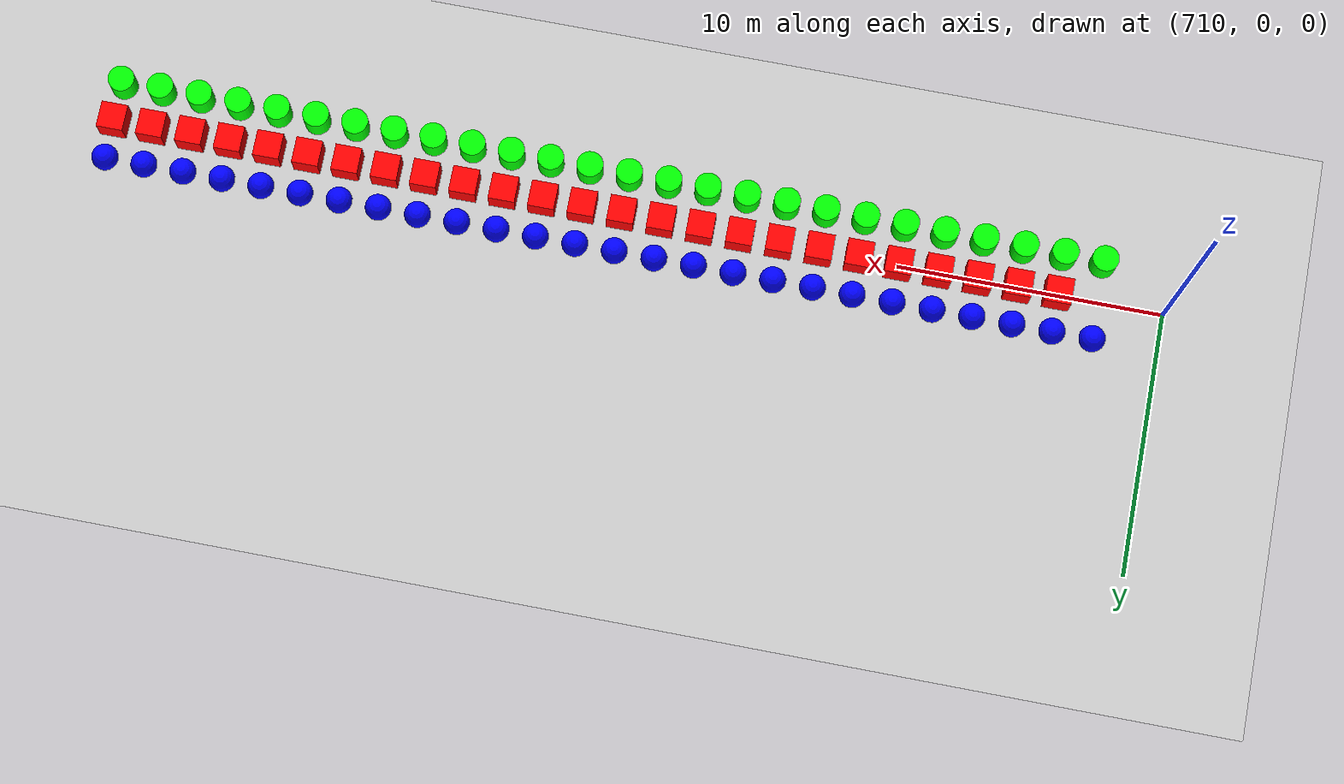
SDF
<sdf version="1.6">
 <world name="shapes">
  <model name="ground_plane">
   <static>true</static>
   <link name="link">
    <collision name="collision">
     <geometry><plane><normal>0 0 1</normal><size>100 100</size></plane></geometry>
    </collision>
    <visual name="visual">
     <geometry><plane><normal>0 0 1</normal><size>100 100</size></plane></geometry>
     <material>
      <ambient>0.8 0.8 0.8 1</ambient>
      <diffuse>0.8 0.8 0.8 1</diffuse>
      <specular>0.8 0.8 0.8 1</specular>
     </material>
    </visual>
   </link>
  </model>
  <model name="cylinder_975">
   <static>false</static>
   <pose>712.5 -1.5 0.5 0 0 0</pose>
   <link name="cylinder_link">
    <inertial>
     <inertia><ixx>2</ixx><ixy>0</ixy><ixz>0</ixz><iyy>2</iyy><iyz>0</iyz><izz>2</izz></inertia>
     <mass>2.0</mass>
    </inertial>
    <collision name="cylinder_collision">
     <geometry><cylinder><radius>0.5</radius><length>1.0</length></cylinder></geometry>
    </collision>
    <visual name="cylinder_visual">
     <geometry><cylinder><radius>0.5</radius><length>1.0</length></cylinder></geometry>
     <material><ambient>0 1 0 1</ambient><diffuse>0 1 0 1</diffuse><specular>0 1 0 1</specular></material>
    </visual>
   </link>
  </model>
  <model name="sphere_975">
   <static>false</static>
   <pose>712.5 1.5 0.5 0 0 0</pose>
   <link name="sphere_link">
    <inertial>
     <inertia><ixx>3</ixx><ixy>0</ixy><ixz>0</ixz><iyy>3</iyy><iyz>0</iyz><izz>3</izz></inertia>
     <mass>3.0</mass>
    </inertial>
    <collision name="sphere_collision"><geometry><sphere><radius>0.5</radius></sphere></geometry></collision>
    <visual name="sphere_visual">
     <geometry><sphere><radius>0.5</radius></sphere></geometry>
     <material><ambient>0 0 1 1</ambient><diffuse>0 0 1 1</diffuse><specular>0 0 1 1</specular></material>
    </visual>
   </link>
  </model>
  <model name="box_976">
   <static>false</static>
   <pose>714.0 0 0.5 0 0 0</pose>
   <link name="box_link">
    <inertial>
     <inertia><ixx>1</ixx><ixy>0</ixy><ixz>0</ixz><iyy>1</iyy><iyz>0</iyz><izz>1</izz></inertia>
     <mass>1.0</mass>
    </inertial>
    <collision name="box_collision"><geometry><box><size>1 1 1</size></box></geometry></collision>
    <visual name="box_visual">
     <geometry><box><size>1 1 1</size></box></geometry>
     <material><ambient>1 0 0 1</ambient><diffuse>1 0 0 1</diffuse><specular>1 0 0 1</specular></material>
    </visual>
   </link>
  </model>
  <model name="cylinder_976">
   <static>false</static>
   <pose>714.0 -1.5 0.5 0 0 0</pose>
   <link name="cylinder_link">
    <inertial>
     <inertia><ixx>2</ixx><ixy>0</ixy><ixz>0</ixz><iyy>2</iyy><iyz>0</iyz><izz>2</izz></inertia>
     <mass>2.0</mass>
    </inertial>
    <collision name="cylinder_collision">
     <geometry><cylinder><radius>0.5</radius><length>1.0</length></cylinder></geometry>
    </collision>
    <visual name="cylinder_visual">
     <geometry><cylinder><radius>0.5</radius><length>1.0</length></cylinder></geometry>
     <material><ambient>0 1 0 1</ambient><diffuse>0 1 0 1</diffuse><specular>0 1 0 1</specular></material>
    </visual>
   </link>
  </model>
  <model name="sphere_976">
   <static>false</static>
   <pose>714.0 1.5 0.5 0 0 0</pose>
   <link name="sphere_link">
    <inertial>
     <inertia><ixx>3</ixx><ixy>0</ixy><ixz>0</ixz><iyy>3</iyy><iyz>0</iyz><izz>3</izz></inertia>
     <mass>3.0</mass>
    </inertial>
    <collision name="sphere_collision"><geometry><sphere><radius>0.5</radius></sphere></geometry></collision>
    <visual name="sphere_visual">
     <geometry><sphere><radius>0.5</radius></sphere></geometry>
     <material><ambient>0 0 1 1</ambient><diffuse>0 0 1 1</diffuse><specular>0 0 1 1</specular></material>
    </visual>
   </link>
  </model>
  <model name="box_977">
   <static>false</static>
   <pose>715.5 0 0.5 0 0 0</pose>
   <link name="box_link">
    <inertial>
     <inertia><ixx>1</ixx><ixy>0</ixy><ixz>0</ixz><iyy>1</iyy><iyz>0</iyz><izz>1</izz></inertia>
     <mass>1.0</mass>
    </inertial>
    <collision name="box_collision"><geometry><box><size>1 1 1</size></box></geometry></collision>
    <visual name="box_visual">
     <geometry><box><size>1 1 1</size></box></geometry>
     <material><ambient>1 0 0 1</ambient><diffuse>1 0 0 1</diffuse><specular>1 0 0 1</specular></material>
    </visual>
   </link>
  </model>
  <model name="cylinder_977">
   <static>false</static>
   <pose>715.5 -1.5 0.5 0 0 0</pose>
   <link name="cylinder_link">
    <inertial>
     <inertia><ixx>2</ixx><ixy>0</ixy><ixz>0</ixz><iyy>2</iyy><iyz>0</iyz><izz>2</izz></inertia>
     <mass>2.0</mass>
    </inertial>
    <collision name="cylinder_collision">
     <geometry><cylinder><radius>0.5</radius><length>1.0</length></cylinder></geometry>
    </collision>
    <visual name="cylinder_visual">
     <geometry><cylinder><radius>0.5</radius><length>1.0</length></cylinder></geometry>
     <material><ambient>0 1 0 1</ambient><diffuse>0 1 0 1</diffuse><specular>0 1 0 1</specular></material>
    </visual>
   </link>
  </model>
  <model name="sphere_977">
   <static>false</static>
   <pose>715.5 1.5 0.5 0 0 0</pose>
   <link name="sphere_link">
    <inertial>
     <inertia><ixx>3</ixx><ixy>0</ixy><ixz>0</ixz><iyy>3</iyy><iyz>0</iyz><izz>3</izz></inertia>
     <mass>3.0</mass>
    </inertial>
    <collision name="sphere_collision"><geometry><sphere><radius>0.5</radius></sphere></geometry></collision>
    <visual name="sphere_visual">
     <geometry><sphere><radius>0.5</radius></sphere></geometry>
     <material><ambient>0 0 1 1</ambient><diffuse>0 0 1 1</diffuse><specular>0 0 1 1</specular></material>
    </visual>
   </link>
  </model>
  <model name="box_978">
   <static>false</static>
   <pose>717.0 0 0.5 0 0 0</pose>
   <link name="box_link">
    <inertial>
     <inertia><ixx>1</ixx><ixy>0</ixy><ixz>0</ixz><iyy>1</iyy><iyz>0</iyz><izz>1</izz></inertia>
     <mass>1.0</mass>
    </inertial>
    <collision name="box_collision"><geometry><box><size>1 1 1</size></box></geometry></collision>
    <visual name="box_visual">
     <geometry><box><size>1 1 1</size></box></geometry>
     <material><ambient>1 0 0 1</ambient><diffuse>1 0 0 1</diffuse><specular>1 0 0 1</specular></material>
    </visual>
   </link>
  </model>
  <model name="cylinder_978">
   <static>false</static>
   <pose>717.0 -1.5 0.5 0 0 0</pose>
   <link name="cylinder_link">
    <inertial>
     <inertia><ixx>2</ixx><ixy>0</ixy><ixz>0</ixz><iyy>2</iyy><iyz>0</iyz><izz>2</izz></inertia>
     <mass>2.0</mass>
    </inertial>
    <collision name="cylinder_collision">
     <geometry><cylinder><radius>0.5</radius><length>1.0</length></cylinder></geometry>
    </collision>
    <visual name="cylinder_visual">
     <geometry><cylinder><radius>0.5</radius><length>1.0</length></cylinder></geometry>
     <material><ambient>0 1 0 1</ambient><diffuse>0 1 0 1</diffuse><specular>0 1 0 1</specular></material>
    </visual>
   </link>
  </model>
  <model name="sphere_978">
   <static>false</static>
   <pose>717.0 1.5 0.5 0 0 0</pose>
   <link name="sphere_link">
    <inertial>
     <inertia><ixx>3</ixx><ixy>0</ixy><ixz>0</ixz><iyy>3</iyy><iyz>0</iyz><izz>3</izz></inertia>
     <mass>3.0</mass>
    </inertial>
    <collision name="sphere_collision"><geometry><sphere><radius>0.5</radius></sphere></geometry></collision>
    <visual name="sphere_visual">
     <geometry><sphere><radius>0.5</radius></sphere></geometry>
     <material><ambient>0 0 1 1</ambient><diffuse>0 0 1 1</diffuse><specular>0 0 1 1</specular></material>
    </visual>
   </link>
  </model>
  <model name="box_979">
   <static>false</static>
   <pose>718.5 0 0.5 0 0 0</pose>
   <link name="box_link">
    <inertial>
     <inertia><ixx>1</ixx><ixy>0</ixy><ixz>0</ixz><iyy>1</iyy><iyz>0</iyz><izz>1</izz></inertia>
     <mass>1.0</mass>
    </inertial>
    <collision name="box_collision"><geometry><box><size>1 1 1</size></box></geometry></collision>
    <visual name="box_visual">
     <geometry><box><size>1 1 1</size></box></geometry>
     <material><ambient>1 0 0 1</ambient><diffuse>1 0 0 1</diffuse><specular>1 0 0 1</specular></material>
    </visual>
   </link>
  </model>
  <model name="cylinder_979">
   <static>false</static>
   <pose>718.5 -1.5 0.5 0 0 0</pose>
   <link name="cylinder_link">
    <inertial>
     <inertia><ixx>2</ixx><ixy>0</ixy><ixz>0</ixz><iyy>2</iyy><iyz>0</iyz><izz>2</izz></inertia>
     <mass>2.0</mass>
    </inertial>
    <collision name="cylinder_collision">
     <geometry><cylinder><radius>0.5</radius><length>1.0</length></cylinder></geometry>
    </collision>
    <visual name="cylinder_visual">
     <geometry><cylinder><radius>0.5</radius><length>1.0</length></cylinder></geometry>
     <material><ambient>0 1 0 1</ambient><diffuse>0 1 0 1</diffuse><specular>0 1 0 1</specular></material>
    </visual>
   </link>
  </model>
  <model name="sphere_979">
   <static>false</static>
   <pose>718.5 1.5 0.5 0 0 0</pose>
   <link name="sphere_link">
    <inertial>
     <inertia><ixx>3</ixx><ixy>0</ixy><ixz>0</ixz><iyy>3</iyy><iyz>0</iyz><izz>3</izz></inertia>
     <mass>3.0</mass>
    </inertial>
    <collision name="sphere_collision"><geometry><sphere><radius>0.5</radius></sphere></geometry></collision>
    <visual name="sphere_visual">
     <geometry><sphere><radius>0.5</radius></sphere></geometry>
     <material><ambient>0 0 1 1</ambient><diffuse>0 0 1 1</diffuse><specular>0 0 1 1</specular></material>
    </visual>
   </link>
  </model>
  <model name="box_980">
   <static>false</static>
   <pose>720.0 0 0.5 0 0 0</pose>
   <link name="box_link">
    <inertial>
     <inertia><ixx>1</ixx><ixy>0</ixy><ixz>0</ixz><iyy>1</iyy><iyz>0</iyz><izz>1</izz></inertia>
     <mass>1.0</mass>
    </inertial>
    <collision name="box_collision"><geometry><box><size>1 1 1</size></box></geometry></collision>
    <visual name="box_visual">
     <geometry><box><size>1 1 1</size></box></geometry>
     <material><ambient>1 0 0 1</ambient><diffuse>1 0 0 1</diffuse><specular>1 0 0 1</specular></material>
    </visual>
   </link>
  </model>
  <model name="cylinder_980">
   <static>false</static>
   <pose>720.0 -1.5 0.5 0 0 0</pose>
   <link name="cylinder_link">
    <inertial>
     <inertia><ixx>2</ixx><ixy>0</ixy><ixz>0</ixz><iyy>2</iyy><iyz>0</iyz><izz>2</izz></inertia>
     <mass>2.0</mass>
    </inertial>
    <collision name="cylinder_collision">
     <geometry><cylinder><radius>0.5</radius><length>1.0</length></cylinder></geometry>
    </collision>
    <visual name="cylinder_visual">
     <geometry><cylinder><radius>0.5</radius><length>1.0</length></cylinder></geometry>
     <material><ambient>0 1 0 1</ambient><diffuse>0 1 0 1</diffuse><specular>0 1 0 1</specular></material>
    </visual>
   </link>
  </model>
  <model name="sphere_980">
   <static>false</static>
   <pose>720.0 1.5 0.5 0 0 0</pose>
   <link name="sphere_link">
    <inertial>
     <inertia><ixx>3</ixx><ixy>0</ixy><ixz>0</ixz><iyy>3</iyy><iyz>0</iyz><izz>3</izz></inertia>
     <mass>3.0</mass>
    </inertial>
    <collision name="sphere_collision"><geometry><sphere><radius>0.5</radius></sphere></geometry></collision>
    <visual name="sphere_visual">
     <geometry><sphere><radius>0.5</radius></sphere></geometry>
     <material><ambient>0 0 1 1</ambient><diffuse>0 0 1 1</diffuse><specular>0 0 1 1</specular></material>
    </visual>
   </link>
  </model>
  <model name="box_981">
   <static>false</static>
   <pose>721.5 0 0.5 0 0 0</pose>
   <link name="box_link">
    <inertial>
     <inertia><ixx>1</ixx><ixy>0</ixy><ixz>0</ixz><iyy>1</iyy><iyz>0</iyz><izz>1</izz></inertia>
     <mass>1.0</mass>
    </inertial>
    <collision name="box_collision"><geometry><box><size>1 1 1</size></box></geometry></collision>
    <visual name="box_visual">
     <geometry><box><size>1 1 1</size></box></geometry>
     <material><ambient>1 0 0 1</ambient><diffuse>1 0 0 1</diffuse><specular>1 0 0 1</specular></material>
    </visual>
   </link>
  </model>
  <model name="cylinder_981">
   <static>false</static>
   <pose>721.5 -1.5 0.5 0 0 0</pose>
   <link name="cylinder_link">
    <inertial>
     <inertia><ixx>2</ixx><ixy>0</ixy><ixz>0</ixz><iyy>2</iyy><iyz>0</iyz><izz>2</izz></inertia>
     <mass>2.0</mass>
    </inertial>
    <collision name="cylinder_collision">
     <geometry><cylinder><radius>0.5</radius><length>1.0</length></cylinder></geometry>
    </collision>
    <visual name="cylinder_visual">
     <geometry><cylinder><radius>0.5</radius><length>1.0</length></cylinder></geometry>
     <material><ambient>0 1 0 1</ambient><diffuse>0 1 0 1</diffuse><specular>0 1 0 1</specular></material>
    </visual>
   </link>
  </model>
  <model name="sphere_981">
   <static>false</static>
   <pose>721.5 1.5 0.5 0 0 0</pose>
   <link name="sphere_link">
    <inertial>
     <inertia><ixx>3</ixx><ixy>0</ixy><ixz>0</ixz><iyy>3</iyy><iyz>0</iyz><izz>3</izz></inertia>
     <mass>3.0</mass>
    </inertial>
    <collision name="sphere_collision"><geometry><sphere><radius>0.5</radius></sphere></geometry></collision>
    <visual name="sphere_visual">
     <geometry><sphere><radius>0.5</radius></sphere></geometry>
     <material><ambient>0 0 1 1</ambient><diffuse>0 0 1 1</diffuse><specular>0 0 1 1</specular></material>
    </visual>
   </link>
  </model>
  <model name="box_982">
   <static>false</static>
   <pose>723.0 0 0.5 0 0 0</pose>
   <link name="box_link">
    <inertial>
     <inertia><ixx>1</ixx><ixy>0</ixy><ixz>0</ixz><iyy>1</iyy><iyz>0</iyz><izz>1</izz></inertia>
     <mass>1.0</mass>
    </inertial>
    <collision name="box_collision"><geometry><box><size>1 1 1</size></box></geometry></collision>
    <visual name="box_visual">
     <geometry><box><size>1 1 1</size></box></geometry>
     <material><ambient>1 0 0 1</ambient><diffuse>1 0 0 1</diffuse><specular>1 0 0 1</specular></material>
    </visual>
   </link>
  </model>
  <model name="cylinder_982">
   <static>false</static>
   <pose>723.0 -1.5 0.5 0 0 0</pose>
   <link name="cylinder_link">
    <inertial>
     <inertia><ixx>2</ixx><ixy>0</ixy><ixz>0</ixz><iyy>2</iyy><iyz>0</iyz><izz>2</izz></inertia>
     <mass>2.0</mass>
    </inertial>
    <collision name="cylinder_collision">
     <geometry><cylinder><radius>0.5</radius><length>1.0</length></cylinder></geometry>
    </collision>
    <visual name="cylinder_visual">
     <geometry><cylinder><radius>0.5</radius><length>1.0</length></cylinder></geometry>
     <material><ambient>0 1 0 1</ambient><diffuse>0 1 0 1</diffuse><specular>0 1 0 1</specular></material>
    </visual>
   </link>
  </model>
  <model name="sphere_982">
   <static>false</static>
   <pose>723.0 1.5 0.5 0 0 0</pose>
   <link name="sphere_link">
    <inertial>
     <inertia><ixx>3</ixx><ixy>0</ixy><ixz>0</ixz><iyy>3</iyy><iyz>0</iyz><izz>3</izz></inertia>
     <mass>3.0</mass>
    </inertial>
    <collision name="sphere_collision"><geometry><sphere><radius>0.5</radius></sphere></geometry></collision>
    <visual name="sphere_visual">
     <geometry><sphere><radius>0.5</radius></sphere></geometry>
     <material><ambient>0 0 1 1</ambient><diffuse>0 0 1 1</diffuse><specular>0 0 1 1</specular></material>
    </visual>
   </link>
  </model>
  <model name="box_983">
   <static>false</static>
   <pose>724.5 0 0.5 0 0 0</pose>
   <link name="box_link">
    <inertial>
     <inertia><ixx>1</ixx><ixy>0</ixy><ixz>0</ixz><iyy>1</iyy><iyz>0</iyz><izz>1</izz></inertia>
     <mass>1.0</mass>
    </inertial>
    <collision name="box_collision"><geometry><box><size>1 1 1</size></box></geometry></collision>
    <visual name="box_visual">
     <geometry><box><size>1 1 1</size></box></geometry>
     <material><ambient>1 0 0 1</ambient><diffuse>1 0 0 1</diffuse><specular>1 0 0 1</specular></material>
    </visual>
   </link>
  </model>
  <model name="cylinder_983">
   <static>false</static>
   <pose>724.5 -1.5 0.5 0 0 0</pose>
   <link name="cylinder_link">
    <inertial>
     <inertia><ixx>2</ixx><ixy>0</ixy><ixz>0</ixz><iyy>2</iyy><iyz>0</iyz><izz>2</izz></inertia>
     <mass>2.0</mass>
    </inertial>
    <collision name="cylinder_collision">
     <geometry><cylinder><radius>0.5</radius><length>1.0</length></cylinder></geometry>
    </collision>
    <visual name="cylinder_visual">
     <geometry><cylinder><radius>0.5</radius><length>1.0</length></cylinder></geometry>
     <material><ambient>0 1 0 1</ambient><diffuse>0 1 0 1</diffuse><specular>0 1 0 1</specular></material>
    </visual>
   </link>
  </model>
  <model name="sphere_983">
   <static>false</static>
   <pose>724.5 1.5 0.5 0 0 0</pose>
   <link name="sphere_link">
    <inertial>
     <inertia><ixx>3</ixx><ixy>0</ixy><ixz>0</ixz><iyy>3</iyy><iyz>0</iyz><izz>3</izz></inertia>
     <mass>3.0</mass>
    </inertial>
    <collision name="sphere_collision"><geometry><sphere><radius>0.5</radius></sphere></geometry></collision>
    <visual name="sphere_visual">
     <geometry><sphere><radius>0.5</radius></sphere></geometry>
     <material><ambient>0 0 1 1</ambient><diffuse>0 0 1 1</diffuse><specular>0 0 1 1</specular></material>
    </visual>
   </link>
  </model>
  <model name="box_984">
   <static>false</static>
   <pose>726.0 0 0.5 0 0 0</pose>
   <link name="box_link">
    <inertial>
     <inertia><ixx>1</ixx><ixy>0</ixy><ixz>0</ixz><iyy>1</iyy><iyz>0</iyz><izz>1</izz></inertia>
     <mass>1.0</mass>
    </inertial>
    <collision name="box_collision"><geometry><box><size>1 1 1</size></box></geometry></collision>
    <visual name="box_visual">
     <geometry><box><size>1 1 1</size></box></geometry>
     <material><ambient>1 0 0 1</ambient><diffuse>1 0 0 1</diffuse><specular>1 0 0 1</specular></material>
    </visual>
   </link>
  </model>
  <model name="cylinder_984">
   <static>false</static>
   <pose>726.0 -1.5 0.5 0 0 0</pose>
   <link name="cylinder_link">
    <inertial>
     <inertia><ixx>2</ixx><ixy>0</ixy><ixz>0</ixz><iyy>2</iyy><iyz>0</iyz><izz>2</izz></inertia>
     <mass>2.0</mass>
    </inertial>
    <collision name="cylinder_collision">
     <geometry><cylinder><radius>0.5</radius><length>1.0</length></cylinder></geometry>
    </collision>
    <visual name="cylinder_visual">
     <geometry><cylinder><radius>0.5</radius><length>1.0</length></cylinder></geometry>
     <material><ambient>0 1 0 1</ambient><diffuse>0 1 0 1</diffuse><specular>0 1 0 1</specular></material>
    </visual>
   </link>
  </model>
  <model name="sphere_984">
   <static>false</static>
   <pose>726.0 1.5 0.5 0 0 0</pose>
   <link name="sphere_link">
    <inertial>
     <inertia><ixx>3</ixx><ixy>0</ixy><ixz>0</ixz><iyy>3</iyy><iyz>0</iyz><izz>3</izz></inertia>
     <mass>3.0</mass>
    </inertial>
    <collision name="sphere_collision"><geometry><sphere><radius>0.5</radius></sphere></geometry></collision>
    <visual name="sphere_visual">
     <geometry><sphere><radius>0.5</radius></sphere></geometry>
     <material><ambient>0 0 1 1</ambient><diffuse>0 0 1 1</diffuse><specular>0 0 1 1</specular></material>
    </visual>
   </link>
  </model>
  <model name="box_985">
   <static>false</static>
   <pose>727.5 0 0.5 0 0 0</pose>
   <link name="box_link">
    <inertial>
     <inertia><ixx>1</ixx><ixy>0</ixy><ixz>0</ixz><iyy>1</iyy><iyz>0</iyz><izz>1</izz></inertia>
     <mass>1.0</mass>
    </inertial>
    <collision name="box_collision"><geometry><box><size>1 1 1</size></box></geometry></collision>
    <visual name="box_visual">
     <geometry><box><size>1 1 1</size></box></geometry>
     <material><ambient>1 0 0 1</ambient><diffuse>1 0 0 1</diffuse><specular>1 0 0 1</specular></material>
    </visual>
   </link>
  </model>
  <model name="cylinder_985">
   <static>false</static>
   <pose>727.5 -1.5 0.5 0 0 0</pose>
   <link name="cylinder_link">
    <inertial>
     <inertia><ixx>2</ixx><ixy>0</ixy><ixz>0</ixz><iyy>2</iyy><iyz>0</iyz><izz>2</izz></inertia>
     <mass>2.0</mass>
    </inertial>
    <collision name="cylinder_collision">
     <geometry><cylinder><radius>0.5</radius><length>1.0</length></cylinder></geometry>
    </collision>
    <visual name="cylinder_visual">
     <geometry><cylinder><radius>0.5</radius><length>1.0</length></cylinder></geometry>
     <material><ambient>0 1 0 1</ambient><diffuse>0 1 0 1</diffuse><specular>0 1 0 1</specular></material>
    </visual>
   </link>
  </model>
  <model name="sphere_985">
   <static>false</static>
   <pose>727.5 1.5 0.5 0 0 0</pose>
   <link name="sphere_link">
    <inertial>
     <inertia><ixx>3</ixx><ixy>0</ixy><ixz>0</ixz><iyy>3</iyy><iyz>0</iyz><izz>3</izz></inertia>
     <mass>3.0</mass>
    </inertial>
    <collision name="sphere_collision"><geometry><sphere><radius>0.5</radius></sphere></geometry></collision>
    <visual name="sphere_visual">
     <geometry><sphere><radius>0.5</radius></sphere></geometry>
     <material><ambient>0 0 1 1</ambient><diffuse>0 0 1 1</diffuse><specular>0 0 1 1</specular></material>
    </visual>
   </link>
  </model>
  <model name="box_986">
   <static>false</static>
   <pose>729.0 0 0.5 0 0 0</pose>
   <link name="box_link">
    <inertial>
     <inertia><ixx>1</ixx><ixy>0</ixy><ixz>0</ixz><iyy>1</iyy><iyz>0</iyz><izz>1</izz></inertia>
     <mass>1.0</mass>
    </inertial>
    <collision name="box_collision"><geometry><box><size>1 1 1</size></box></geometry></collision>
    <visual name="box_visual">
     <geometry><box><size>1 1 1</size></box></geometry>
     <material><ambient>1 0 0 1</ambient><diffuse>1 0 0 1</diffuse><specular>1 0 0 1</specular></material>
    </visual>
   </link>
  </model>
  <model name="cylinder_986">
   <static>false</static>
   <pose>729.0 -1.5 0.5 0 0 0</pose>
   <link name="cylinder_link">
    <inertial>
     <inertia><ixx>2</ixx><ixy>0</ixy><ixz>0</ixz><iyy>2</iyy><iyz>0</iyz><izz>2</izz></inertia>
     <mass>2.0</mass>
    </inertial>
    <collision name="cylinder_collision">
     <geometry><cylinder><radius>0.5</radius><length>1.0</length></cylinder></geometry>
    </collision>
    <visual name="cylinder_visual">
     <geometry><cylinder><radius>0.5</radius><length>1.0</length></cylinder></geometry>
     <material><ambient>0 1 0 1</ambient><diffuse>0 1 0 1</diffuse><specular>0 1 0 1</specular></material>
    </visual>
   </link>
  </model>
  <model name="sphere_986">
   <static>false</static>
   <pose>729.0 1.5 0.5 0 0 0</pose>
   <link name="sphere_link">
    <inertial>
     <inertia><ixx>3</ixx><ixy>0</ixy><ixz>0</ixz><iyy>3</iyy><iyz>0</iyz><izz>3</izz></inertia>
     <mass>3.0</mass>
    </inertial>
    <collision name="sphere_collision"><geometry><sphere><radius>0.5</radius></sphere></geometry></collision>
    <visual name="sphere_visual">
     <geometry><sphere><radius>0.5</radius></sphere></geometry>
     <material><ambient>0 0 1 1</ambient><diffuse>0 0 1 1</diffuse><specular>0 0 1 1</specular></material>
    </visual>
   </link>
  </model>
  <model name="box_987">
   <static>false</static>
   <pose>730.5 0 0.5 0 0 0</pose>
   <link name="box_link">
    <inertial>
     <inertia><ixx>1</ixx><ixy>0</ixy><ixz>0</ixz><iyy>1</iyy><iyz>0</iyz><izz>1</izz></inertia>
     <mass>1.0</mass>
    </inertial>
    <collision name="box_collision"><geometry><box><size>1 1 1</size></box></geometry></collision>
    <visual name="box_visual">
     <geometry><box><size>1 1 1</size></box></geometry>
     <material><ambient>1 0 0 1</ambient><diffuse>1 0 0 1</diffuse><specular>1 0 0 1</specular></material>
    </visual>
   </link>
  </model>
  <model name="cylinder_987">
   <static>false</static>
   <pose>730.5 -1.5 0.5 0 0 0</pose>
   <link name="cylinder_link">
    <inertial>
     <inertia><ixx>2</ixx><ixy>0</ixy><ixz>0</ixz><iyy>2</iyy><iyz>0</iyz><izz>2</izz></inertia>
     <mass>2.0</mass>
    </inertial>
    <collision name="cylinder_collision">
     <geometry><cylinder><radius>0.5</radius><length>1.0</length></cylinder></geometry>
    </collision>
    <visual name="cylinder_visual">
     <geometry><cylinder><radius>0.5</radius><length>1.0</length></cylinder></geometry>
     <material><ambient>0 1 0 1</ambient><diffuse>0 1 0 1</diffuse><specular>0 1 0 1</specular></material>
    </visual>
   </link>
  </model>
  <model name="sphere_987">
   <static>false</static>
   <pose>730.5 1.5 0.5 0 0 0</pose>
   <link name="sphere_link">
    <inertial>
     <inertia><ixx>3</ixx><ixy>0</ixy><ixz>0</ixz><iyy>3</iyy><iyz>0</iyz><izz>3</izz></inertia>
     <mass>3.0</mass>
    </inertial>
    <collision name="sphere_collision"><geometry><sphere><radius>0.5</radius></sphere></geometry></collision>
    <visual name="sphere_visual">
     <geometry><sphere><radius>0.5</radius></sphere></geometry>
     <material><ambient>0 0 1 1</ambient><diffuse>0 0 1 1</diffuse><specular>0 0 1 1</specular></material>
    </visual>
   </link>
  </model>
  <model name="box_988">
   <static>false</static>
   <pose>732.0 0 0.5 0 0 0</pose>
   <link name="box_link">
    <inertial>
     <inertia><ixx>1</ixx><ixy>0</ixy><ixz>0</ixz><iyy>1</iyy><iyz>0</iyz><izz>1</izz></inertia>
     <mass>1.0</mass>
    </inertial>
    <collision name="box_collision"><geometry><box><size>1 1 1</size></box></geometry></collision>
    <visual name="box_visual">
     <geometry><box><size>1 1 1</size></box></geometry>
     <material><ambient>1 0 0 1</ambient><diffuse>1 0 0 1</diffuse><specular>1 0 0 1</specular></material>
    </visual>
   </link>
  </model>
  <model name="cylinder_988">
   <static>false</static>
   <pose>732.0 -1.5 0.5 0 0 0</pose>
   <link name="cylinder_link">
    <inertial>
     <inertia><ixx>2</ixx><ixy>0</ixy><ixz>0</ixz><iyy>2</iyy><iyz>0</iyz><izz>2</izz></inertia>
     <mass>2.0</mass>
    </inertial>
    <collision name="cylinder_collision">
     <geometry><cylinder><radius>0.5</radius><length>1.0</length></cylinder></geometry>
    </collision>
    <visual name="cylinder_visual">
     <geometry><cylinder><radius>0.5</radius><length>1.0</length></cylinder></geometry>
     <material><ambient>0 1 0 1</ambient><diffuse>0 1 0 1</diffuse><specular>0 1 0 1</specular></material>
    </visual>
   </link>
  </model>
  <model name="sphere_988">
   <static>false</static>
   <pose>732.0 1.5 0.5 0 0 0</pose>
   <link name="sphere_link">
    <inertial>
     <inertia><ixx>3</ixx><ixy>0</ixy><ixz>0</ixz><iyy>3</iyy><iyz>0</iyz><izz>3</izz></inertia>
     <mass>3.0</mass>
    </inertial>
    <collision name="sphere_collision"><geometry><sphere><radius>0.5</radius></sphere></geometry></collision>
    <visual name="sphere_visual">
     <geometry><sphere><radius>0.5</radius></sphere></geometry>
     <material><ambient>0 0 1 1</ambient><diffuse>0 0 1 1</diffuse><specular>0 0 1 1</specular></material>
    </visual>
   </link>
  </model>
  <model name="box_989">
   <static>false</static>
   <pose>733.5 0 0.5 0 0 0</pose>
   <link name="box_link">
    <inertial>
     <inertia><ixx>1</ixx><ixy>0</ixy><ixz>0</ixz><iyy>1</iyy><iyz>0</iyz><izz>1</izz></inertia>
     <mass>1.0</mass>
    </inertial>
    <collision name="box_collision"><geometry><box><size>1 1 1</size></box></geometry></collision>
    <visual name="box_visual">
     <geometry><box><size>1 1 1</size></box></geometry>
     <material><ambient>1 0 0 1</ambient><diffuse>1 0 0 1</diffuse><specular>1 0 0 1</specular></material>
    </visual>
   </link>
  </model>
  <model name="cylinder_989">
   <static>false</static>
   <pose>733.5 -1.5 0.5 0 0 0</pose>
   <link name="cylinder_link">
    <inertial>
     <inertia><ixx>2</ixx><ixy>0</ixy><ixz>0</ixz><iyy>2</iyy><iyz>0</iyz><izz>2</izz></inertia>
     <mass>2.0</mass>
    </inertial>
    <collision name="cylinder_collision">
     <geometry><cylinder><radius>0.5</radius><length>1.0</length></cylinder></geometry>
    </collision>
    <visual name="cylinder_visual">
     <geometry><cylinder><radius>0.5</radius><length>1.0</length></cylinder></geometry>
     <material><ambient>0 1 0 1</ambient><diffuse>0 1 0 1</diffuse><specular>0 1 0 1</specular></material>
    </visual>
   </link>
  </model>
  <model name="sphere_989">
   <static>false</static>
   <pose>733.5 1.5 0.5 0 0 0</pose>
   <link name="sphere_link">
    <inertial>
     <inertia><ixx>3</ixx><ixy>0</ixy><ixz>0</ixz><iyy>3</iyy><iyz>0</iyz><izz>3</izz></inertia>
     <mass>3.0</mass>
    </inertial>
    <collision name="sphere_collision"><geometry><sphere><radius>0.5</radius></sphere></geometry></collision>
    <visual name="sphere_visual">
     <geometry><sphere><radius>0.5</radius></sphere></geometry>
     <material><ambient>0 0 1 1</ambient><diffuse>0 0 1 1</diffuse><specular>0 0 1 1</specular></material>
    </visual>
   </link>
  </model>
  <model name="box_990">
   <static>false</static>
   <pose>735.0 0 0.5 0 0 0</pose>
   <link name="box_link">
    <inertial>
     <inertia><ixx>1</ixx><ixy>0</ixy><ixz>0</ixz><iyy>1</iyy><iyz>0</iyz><izz>1</izz></inertia>
     <mass>1.0</mass>
    </inertial>
    <collision name="box_collision"><geometry><box><size>1 1 1</size></box></geometry></collision>
    <visual name="box_visual">
     <geometry><box><size>1 1 1</size></box></geometry>
     <material><ambient>1 0 0 1</ambient><diffuse>1 0 0 1</diffuse><specular>1 0 0 1</specular></material>
    </visual>
   </link>
  </model>
  <model name="cylinder_990">
   <static>false</static>
   <pose>735.0 -1.5 0.5 0 0 0</pose>
   <link name="cylinder_link">
    <inertial>
     <inertia><ixx>2</ixx><ixy>0</ixy><ixz>0</ixz><iyy>2</iyy><iyz>0</iyz><izz>2</izz></inertia>
     <mass>2.0</mass>
    </inertial>
    <collision name="cylinder_collision">
     <geometry><cylinder><radius>0.5</radius><length>1.0</length></cylinder></geometry>
    </collision>
    <visual name="cylinder_visual">
     <geometry><cylinder><radius>0.5</radius><length>1.0</length></cylinder></geometry>
     <material><ambient>0 1 0 1</ambient><diffuse>0 1 0 1</diffuse><specular>0 1 0 1</specular></material>
    </visual>
   </link>
  </model>
  <model name="sphere_990">
   <static>false</static>
   <pose>735.0 1.5 0.5 0 0 0</pose>
   <link name="sphere_link">
    <inertial>
     <inertia><ixx>3</ixx><ixy>0</ixy><ixz>0</ixz><iyy>3</iyy><iyz>0</iyz><izz>3</izz></inertia>
     <mass>3.0</mass>
    </inertial>
    <collision name="sphere_collision"><geometry><sphere><radius>0.5</radius></sphere></geometry></collision>
    <visual name="sphere_visual">
     <geometry><sphere><radius>0.5</radius></sphere></geometry>
     <material><ambient>0 0 1 1</ambient><diffuse>0 0 1 1</diffuse><specular>0 0 1 1</specular></material>
    </visual>
   </link>
  </model>
  <model name="box_991">
   <static>false</static>
   <pose>736.5 0 0.5 0 0 0</pose>
   <link name="box_link">
    <inertial>
     <inertia><ixx>1</ixx><ixy>0</ixy><ixz>0</ixz><iyy>1</iyy><iyz>0</iyz><izz>1</izz></inertia>
     <mass>1.0</mass>
    </inertial>
    <collision name="box_collision"><geometry><box><size>1 1 1</size></box></geometry></collision>
    <visual name="box_visual">
     <geometry><box><size>1 1 1</size></box></geometry>
     <material><ambient>1 0 0 1</ambient><diffuse>1 0 0 1</diffuse><specular>1 0 0 1</specular></material>
    </visual>
   </link>
  </model>
  <model name="cylinder_991">
   <static>false</static>
   <pose>736.5 -1.5 0.5 0 0 0</pose>
   <link name="cylinder_link">
    <inertial>
     <inertia><ixx>2</ixx><ixy>0</ixy><ixz>0</ixz><iyy>2</iyy><iyz>0</iyz><izz>2</izz></inertia>
     <mass>2.0</mass>
    </inertial>
    <collision name="cylinder_collision">
     <geometry><cylinder><radius>0.5</radius><length>1.0</length></cylinder></geometry>
    </collision>
    <visual name="cylinder_visual">
     <geometry><cylinder><radius>0.5</radius><length>1.0</length></cylinder></geometry>
     <material><ambient>0 1 0 1</ambient><diffuse>0 1 0 1</diffuse><specular>0 1 0 1</specular></material>
    </visual>
   </link>
  </model>
  <model name="sphere_991">
   <static>false</static>
   <pose>736.5 1.5 0.5 0 0 0</pose>
   <link name="sphere_link">
    <inertial>
     <inertia><ixx>3</ixx><ixy>0</ixy><ixz>0</ixz><iyy>3</iyy><iyz>0</iyz><izz>3</izz></inertia>
     <mass>3.0</mass>
    </inertial>
    <collision name="sphere_collision"><geometry><sphere><radius>0.5</radius></sphere></geometry></collision>
    <visual name="sphere_visual">
     <geometry><sphere><radius>0.5</radius></sphere></geometry>
     <material><ambient>0 0 1 1</ambient><diffuse>0 0 1 1</diffuse><specular>0 0 1 1</specular></material>
    </visual>
   </link>
  </model>
  <model name="box_992">
   <static>false</static>
   <pose>738.0 0 0.5 0 0 0</pose>
   <link name="box_link">
    <inertial>
     <inertia><ixx>1</ixx><ixy>0</ixy><ixz>0</ixz><iyy>1</iyy><iyz>0</iyz><izz>1</izz></inertia>
     <mass>1.0</mass>
    </inertial>
    <collision name="box_collision"><geometry><box><size>1 1 1</size></box></geometry></collision>
    <visual name="box_visual">
     <geometry><box><size>1 1 1</size></box></geometry>
     <material><ambient>1 0 0 1</ambient><diffuse>1 0 0 1</diffuse><specular>1 0 0 1</specular></material>
    </visual>
   </link>
  </model>
  <model name="cylinder_992">
   <static>false</static>
   <pose>738.0 -1.5 0.5 0 0 0</pose>
   <link name="cylinder_link">
    <inertial>
     <inertia><ixx>2</ixx><ixy>0</ixy><ixz>0</ixz><iyy>2</iyy><iyz>0</iyz><izz>2</izz></inertia>
     <mass>2.0</mass>
    </inertial>
    <collision name="cylinder_collision">
     <geometry><cylinder><radius>0.5</radius><length>1.0</length></cylinder></geometry>
    </collision>
    <visual name="cylinder_visual">
     <geometry><cylinder><radius>0.5</radius><length>1.0</length></cylinder></geometry>
     <material><ambient>0 1 0 1</ambient><diffuse>0 1 0 1</diffuse><specular>0 1 0 1</specular></material>
    </visual>
   </link>
  </model>
  <model name="sphere_992">
   <static>false</static>
   <pose>738.0 1.5 0.5 0 0 0</pose>
   <link name="sphere_link">
    <inertial>
     <inertia><ixx>3</ixx><ixy>0</ixy><ixz>0</ixz><iyy>3</iyy><iyz>0</iyz><izz>3</izz></inertia>
     <mass>3.0</mass>
    </inertial>
    <collision name="sphere_collision"><geometry><sphere><radius>0.5</radius></sphere></geometry></collision>
    <visual name="sphere_visual">
     <geometry><sphere><radius>0.5</radius></sphere></geometry>
     <material><ambient>0 0 1 1</ambient><diffuse>0 0 1 1</diffuse><specular>0 0 1 1</specular></material>
    </visual>
   </link>
  </model>
  <model name="box_993">
   <static>false</static>
   <pose>739.5 0 0.5 0 0 0</pose>
   <link name="box_link">
    <inertial>
     <inertia><ixx>1</ixx><ixy>0</ixy><ixz>0</ixz><iyy>1</iyy><iyz>0</iyz><izz>1</izz></inertia>
     <mass>1.0</mass>
    </inertial>
    <collision name="box_collision"><geometry><box><size>1 1 1</size></box></geometry></collision>
    <visual name="box_visual">
     <geometry><box><size>1 1 1</size></box></geometry>
     <material><ambient>1 0 0 1</ambient><diffuse>1 0 0 1</diffuse><specular>1 0 0 1</specular></material>
    </visual>
   </link>
  </model>
  <model name="cylinder_993">
   <static>false</static>
   <pose>739.5 -1.5 0.5 0 0 0</pose>
   <link name="cylinder_link">
    <inertial>
     <inertia><ixx>2</ixx><ixy>0</ixy><ixz>0</ixz><iyy>2</iyy><iyz>0</iyz><izz>2</izz></inertia>
     <mass>2.0</mass>
    </inertial>
    <collision name="cylinder_collision">
     <geometry><cylinder><radius>0.5</radius><length>1.0</length></cylinder></geometry>
    </collision>
    <visual name="cylinder_visual">
     <geometry><cylinder><radius>0.5</radius><length>1.0</length></cylinder></geometry>
     <material><ambient>0 1 0 1</ambient><diffuse>0 1 0 1</diffuse><specular>0 1 0 1</specular></material>
    </visual>
   </link>
  </model>
  <model name="sphere_993">
   <static>false</static>
   <pose>739.5 1.5 0.5 0 0 0</pose>
   <link name="sphere_link">
    <inertial>
     <inertia><ixx>3</ixx><ixy>0</ixy><ixz>0</ixz><iyy>3</iyy><iyz>0</iyz><izz>3</izz></inertia>
     <mass>3.0</mass>
    </inertial>
    <collision name="sphere_collision"><geometry><sphere><radius>0.5</radius></sphere></geometry></collision>
    <visual name="sphere_visual">
     <geometry><sphere><radius>0.5</radius></sphere></geometry>
     <material><ambient>0 0 1 1</ambient><diffuse>0 0 1 1</diffuse><specular>0 0 1 1</specular></material>
    </visual>
   </link>
  </model>
  <model name="box_994">
   <static>false</static>
   <pose>741.0 0 0.5 0 0 0</pose>
   <link name="box_link">
    <inertial>
     <inertia><ixx>1</ixx><ixy>0</ixy><ixz>0</ixz><iyy>1</iyy><iyz>0</iyz><izz>1</izz></inertia>
     <mass>1.0</mass>
    </inertial>
    <collision name="box_collision"><geometry><box><size>1 1 1</size></box></geometry></collision>
    <visual name="box_visual">
     <geometry><box><size>1 1 1</size></box></geometry>
     <material><ambient>1 0 0 1</ambient><diffuse>1 0 0 1</diffuse><specular>1 0 0 1</specular></material>
    </visual>
   </link>
  </model>
  <model name="cylinder_994">
   <static>false</static>
   <pose>741.0 -1.5 0.5 0 0 0</pose>
   <link name="cylinder_link">
    <inertial>
     <inertia><ixx>2</ixx><ixy>0</ixy><ixz>0</ixz><iyy>2</iyy><iyz>0</iyz><izz>2</izz></inertia>
     <mass>2.0</mass>
    </inertial>
    <collision name="cylinder_collision">
     <geometry><cylinder><radius>0.5</radius><length>1.0</length></cylinder></geometry>
    </collision>
    <visual name="cylinder_visual">
     <geometry><cylinder><radius>0.5</radius><length>1.0</length></cylinder></geometry>
     <material><ambient>0 1 0 1</ambient><diffuse>0 1 0 1</diffuse><specular>0 1 0 1</specular></material>
    </visual>
   </link>
  </model>
  <model name="sphere_994">
   <static>false</static>
   <pose>741.0 1.5 0.5 0 0 0</pose>
   <link name="sphere_link">
    <inertial>
     <inertia><ixx>3</ixx><ixy>0</ixy><ixz>0</ixz><iyy>3</iyy><iyz>0</iyz><izz>3</izz></inertia>
     <mass>3.0</mass>
    </inertial>
    <collision name="sphere_collision"><geometry><sphere><radius>0.5</radius></sphere></geometry></collision>
    <visual name="sphere_visual">
     <geometry><sphere><radius>0.5</radius></sphere></geometry>
     <material><ambient>0 0 1 1</ambient><diffuse>0 0 1 1</diffuse><specular>0 0 1 1</specular></material>
    </visual>
   </link>
  </model>
  <model name="box_995">
   <static>false</static>
   <pose>742.5 0 0.5 0 0 0</pose>
   <link name="box_link">
    <inertial>
     <inertia><ixx>1</ixx><ixy>0</ixy><ixz>0</ixz><iyy>1</iyy><iyz>0</iyz><izz>1</izz></inertia>
     <mass>1.0</mass>
    </inertial>
    <collision name="box_collision"><geometry><box><size>1 1 1</size></box></geometry></collision>
    <visual name="box_visual">
     <geometry><box><size>1 1 1</size></box></geometry>
     <material><ambient>1 0 0 1</ambient><diffuse>1 0 0 1</diffuse><specular>1 0 0 1</specular></material>
    </visual>
   </link>
  </model>
  <model name="cylinder_995">
   <static>false</static>
   <pose>742.5 -1.5 0.5 0 0 0</pose>
   <link name="cylinder_link">
    <inertial>
     <inertia><ixx>2</ixx><ixy>0</ixy><ixz>0</ixz><iyy>2</iyy><iyz>0</iyz><izz>2</izz></inertia>
     <mass>2.0</mass>
    </inertial>
    <collision name="cylinder_collision">
     <geometry><cylinder><radius>0.5</radius><length>1.0</length></cylinder></geometry>
    </collision>
    <visual name="cylinder_visual">
     <geometry><cylinder><radius>0.5</radius><length>1.0</length></cylinder></geometry>
     <material><ambient>0 1 0 1</ambient><diffuse>0 1 0 1</diffuse><specular>0 1 0 1</specular></material>
    </visual>
   </link>
  </model>
  <model name="sphere_995">
   <static>false</static>
   <pose>742.5 1.5 0.5 0 0 0</pose>
   <link name="sphere_link">
    <inertial>
     <inertia><ixx>3</ixx><ixy>0</ixy><ixz>0</ixz><iyy>3</iyy><iyz>0</iyz><izz>3</izz></inertia>
     <mass>3.0</mass>
    </inertial>
    <collision name="sphere_collision"><geometry><sphere><radius>0.5</radius></sphere></geometry></collision>
    <visual name="sphere_visual">
     <geometry><sphere><radius>0.5</radius></sphere></geometry>
     <material><ambient>0 0 1 1</ambient><diffuse>0 0 1 1</diffuse><specular>0 0 1 1</specular></material>
    </visual>
   </link>
  </model>
  <model name="box_996">
   <static>false</static>
   <pose>744.0 0 0.5 0 0 0</pose>
   <link name="box_link">
    <inertial>
     <inertia><ixx>1</ixx><ixy>0</ixy><ixz>0</ixz><iyy>1</iyy><iyz>0</iyz><izz>1</izz></inertia>
     <mass>1.0</mass>
    </inertial>
    <collision name="box_collision"><geometry><box><size>1 1 1</size></box></geometry></collision>
    <visual name="box_visual">
     <geometry><box><size>1 1 1</size></box></geometry>
     <material><ambient>1 0 0 1</ambient><diffuse>1 0 0 1</diffuse><specular>1 0 0 1</specular></material>
    </visual>
   </link>
  </model>
  <model name="cylinder_996">
   <static>false</static>
   <pose>744.0 -1.5 0.5 0 0 0</pose>
   <link name="cylinder_link">
    <inertial>
     <inertia><ixx>2</ixx><ixy>0</ixy><ixz>0</ixz><iyy>2</iyy><iyz>0</iyz><izz>2</izz></inertia>
     <mass>2.0</mass>
    </inertial>
    <collision name="cylinder_collision">
     <geometry><cylinder><radius>0.5</radius><length>1.0</length></cylinder></geometry>
    </collision>
    <visual name="cylinder_visual">
     <geometry><cylinder><radius>0.5</radius><length>1.0</length></cylinder></geometry>
     <material><ambient>0 1 0 1</ambient><diffuse>0 1 0 1</diffuse><specular>0 1 0 1</specular></material>
    </visual>
   </link>
  </model>
  <model name="sphere_996">
   <static>false</static>
   <pose>744.0 1.5 0.5 0 0 0</pose>
   <link name="sphere_link">
    <inertial>
     <inertia><ixx>3</ixx><ixy>0</ixy><ixz>0</ixz><iyy>3</iyy><iyz>0</iyz><izz>3</izz></inertia>
     <mass>3.0</mass>
    </inertial>
    <collision name="sphere_collision"><geometry><sphere><radius>0.5</radius></sphere></geometry></collision>
    <visual name="sphere_visual">
     <geometry><sphere><radius>0.5</radius></sphere></geometry>
     <material><ambient>0 0 1 1</ambient><diffuse>0 0 1 1</diffuse><specular>0 0 1 1</specular></material>
    </visual>
   </link>
  </model>
  <model name="box_997">
   <static>false</static>
   <pose>745.5 0 0.5 0 0 0</pose>
   <link name="box_link">
    <inertial>
     <inertia><ixx>1</ixx><ixy>0</ixy><ixz>0</ixz><iyy>1</iyy><iyz>0</iyz><izz>1</izz></inertia>
     <mass>1.0</mass>
    </inertial>
    <collision name="box_collision"><geometry><box><size>1 1 1</size></box></geometry></collision>
    <visual name="box_visual">
     <geometry><box><size>1 1 1</size></box></geometry>
     <material><ambient>1 0 0 1</ambient><diffuse>1 0 0 1</diffuse><specular>1 0 0 1</specular></material>
    </visual>
   </link>
  </model>
  <model name="cylinder_997">
   <static>false</static>
   <pose>745.5 -1.5 0.5 0 0 0</pose>
   <link name="cylinder_link">
    <inertial>
     <inertia><ixx>2</ixx><ixy>0</ixy><ixz>0</ixz><iyy>2</iyy><iyz>0</iyz><izz>2</izz></inertia>
     <mass>2.0</mass>
    </inertial>
    <collision name="cylinder_collision">
     <geometry><cylinder><radius>0.5</radius><length>1.0</length></cylinder></geometry>
    </collision>
    <visual name="cylinder_visual">
     <geometry><cylinder><radius>0.5</radius><length>1.0</length></cylinder></geometry>
     <material><ambient>0 1 0 1</ambient><diffuse>0 1 0 1</diffuse><specular>0 1 0 1</specular></material>
    </visual>
   </link>
  </model>
  <model name="sphere_997">
   <static>false</static>
   <pose>745.5 1.5 0.5 0 0 0</pose>
   <link name="sphere_link">
    <inertial>
     <inertia><ixx>3</ixx><ixy>0</ixy><ixz>0</ixz><iyy>3</iyy><iyz>0</iyz><izz>3</izz></inertia>
     <mass>3.0</mass>
    </inertial>
    <collision name="sphere_collision"><geometry><sphere><radius>0.5</radius></sphere></geometry></collision>
    <visual name="sphere_visual">
     <geometry><sphere><radius>0.5</radius></sphere></geometry>
     <material><ambient>0 0 1 1</ambient><diffuse>0 0 1 1</diffuse><specular>0 0 1 1</specular></material>
    </visual>
   </link>
  </model>
  <model name="box_998">
   <static>false</static>
   <pose>747.0 0 0.5 0 0 0</pose>
   <link name="box_link">
    <inertial>
     <inertia><ixx>1</ixx><ixy>0</ixy><ixz>0</ixz><iyy>1</iyy><iyz>0</iyz><izz>1</izz></inertia>
     <mass>1.0</mass>
    </inertial>
    <collision name="box_collision"><geometry><box><size>1 1 1</size></box></geometry></collision>
    <visual name="box_visual">
     <geometry><box><size>1 1 1</size></box></geometry>
     <material><ambient>1 0 0 1</ambient><diffuse>1 0 0 1</diffuse><specular>1 0 0 1</specular></material>
    </visual>
   </link>
  </model>
  <model name="cylinder_998">
   <static>false</static>
   <pose>747.0 -1.5 0.5 0 0 0</pose>
   <link name="cylinder_link">
    <inertial>
     <inertia><ixx>2</ixx><ixy>0</ixy><ixz>0</ixz><iyy>2</iyy><iyz>0</iyz><izz>2</izz></inertia>
     <mass>2.0</mass>
    </inertial>
    <collision name="cylinder_collision">
     <geometry><cylinder><radius>0.5</radius><length>1.0</length></cylinder></geometry>
    </collision>
    <visual name="cylinder_visual">
     <geometry><cylinder><radius>0.5</radius><length>1.0</length></cylinder></geometry>
     <material><ambient>0 1 0 1</ambient><diffuse>0 1 0 1</diffuse><specular>0 1 0 1</specular></material>
    </visual>
   </link>
  </model>
  <model name="sphere_998">
   <static>false</static>
   <pose>747.0 1.5 0.5 0 0 0</pose>
   <link name="sphere_link">
    <inertial>
     <inertia><ixx>3</ixx><ixy>0</ixy><ixz>0</ixz><iyy>3</iyy><iyz>0</iyz><izz>3</izz></inertia>
     <mass>3.0</mass>
    </inertial>
    <collision name="sphere_collision"><geometry><sphere><radius>0.5</radius></sphere></geometry></collision>
    <visual name="sphere_visual">
     <geometry><sphere><radius>0.5</radius></sphere></geometry>
     <material><ambient>0 0 1 1</ambient><diffuse>0 0 1 1</diffuse><specular>0 0 1 1</specular></material>
    </visual>
   </link>
  </model>
  <model name="box_999">
   <static>false</static>
   <pose>748.5 0 0.5 0 0 0</pose>
   <link name="box_link">
    <inertial>
     <inertia><ixx>1</ixx><ixy>0</ixy><ixz>0</ixz><iyy>1</iyy><iyz>0</iyz><izz>1</izz></inertia>
     <mass>1.0</mass>
    </inertial>
    <collision name="box_collision"><geometry><box><size>1 1 1</size></box></geometry></collision>
    <visual name="box_visual">
     <geometry><box><size>1 1 1</size></box></geometry>
     <material><ambient>1 0 0 1</ambient><diffuse>1 0 0 1</diffuse><specular>1 0 0 1</specular></material>
    </visual>
   </link>
  </model>
  <model name="cylinder_999">
   <static>false</static>
   <pose>748.5 -1.5 0.5 0 0 0</pose>
   <link name="cylinder_link">
    <inertial>
     <inertia><ixx>2</ixx><ixy>0</ixy><ixz>0</ixz><iyy>2</iyy><iyz>0</iyz><izz>2</izz></inertia>
     <mass>2.0</mass>
    </inertial>
    <collision name="cylinder_collision">
     <geometry><cylinder><radius>0.5</radius><length>1.0</length></cylinder></geometry>
    </collision>
    <visual name="cylinder_visual">
     <geometry><cylinder><radius>0.5</radius><length>1.0</length></cylinder></geometry>
     <material><ambient>0 1 0 1</ambient><diffuse>0 1 0 1</diffuse><specular>0 1 0 1</specular></material>
    </visual>
   </link>
  </model>
  <model name="sphere_999">
   <static>false</static>
   <pose>748.5 1.5 0.5 0 0 0</pose>
   <link name="sphere_link">
    <inertial>
     <inertia><ixx>3</ixx><ixy>0</ixy><ixz>0</ixz><iyy>3</iyy><iyz>0</iyz><izz>3</izz></inertia>
     <mass>3.0</mass>
    </inertial>
    <collision name="sphere_collision"><geometry><sphere><radius>0.5</radius></sphere></geometry></collision>
    <visual name="sphere_visual">
     <geometry><sphere><radius>0.5</radius></sphere></geometry>
     <material><ambient>0 0 1 1</ambient><diffuse>0 0 1 1</diffuse><specular>0 0 1 1</specular></material>
    </visual>
   </link>
  </model>
  <model name="box_1000">
   <static>false</static>
   <pose>750.0 0 0.5 0 0 0</pose>
   <link name="box_link">
    <inertial>
     <inertia><ixx>1</ixx><ixy>0</ixy><ixz>0</ixz><iyy>1</iyy><iyz>0</iyz><izz>1</izz></inertia>
     <mass>1.0</mass>
    </inertial>
    <collision name="box_collision"><geometry><box><size>1 1 1</size></box></geometry></collision>
    <visual name="box_visual">
     <geometry><box><size>1 1 1</size></box></geometry>
     <material><ambient>1 0 0 1</ambient><diffuse>1 0 0 1</diffuse><specular>1 0 0 1</specular></material>
    </visual>
   </link>
  </model>
  <model name="cylinder_1000">
   <static>false</static>
   <pose>750.0 -1.5 0.5 0 0 0</pose>
   <link name="cylinder_link">
    <inertial>
     <inertia><ixx>2</ixx><ixy>0</ixy><ixz>0</ixz><iyy>2</iyy><iyz>0</iyz><izz>2</izz></inertia>
     <mass>2.0</mass>
    </inertial>
    <collision name="cylinder_collision">
     <geometry><cylinder><radius>0.5</radius><length>1.0</length></cylinder></geometry>
    </collision>
    <visual name="cylinder_visual">
     <geometry><cylinder><radius>0.5</radius><length>1.0</length></cylinder></geometry>
     <material><ambient>0 1 0 1</ambient><diffuse>0 1 0 1</diffuse><specular>0 1 0 1</specular></material>
    </visual>
   </link>
  </model>
  <model name="sphere_1000">
   <static>false</static>
   <pose>750.0 1.5 0.5 0 0 0</pose>
   <link name="sphere_link">
    <inertial>
     <inertia><ixx>3</ixx><ixy>0</ixy><ixz>0</ixz><iyy>3</iyy><iyz>0</iyz><izz>3</izz></inertia>
     <mass>3.0</mass>
    </inertial>
    <collision name="sphere_collision"><geometry><sphere><radius>0.5</radius></sphere></geometry></collision>
    <visual name="sphere_visual">
     <geometry><sphere><radius>0.5</radius></sphere></geometry>
     <material><ambient>0 0 1 1</ambient><diffuse>0 0 1 1</diffuse><specular>0 0 1 1</specular></material>
    </visual>
   </link>
  </model>
 </world>
</sdf>
